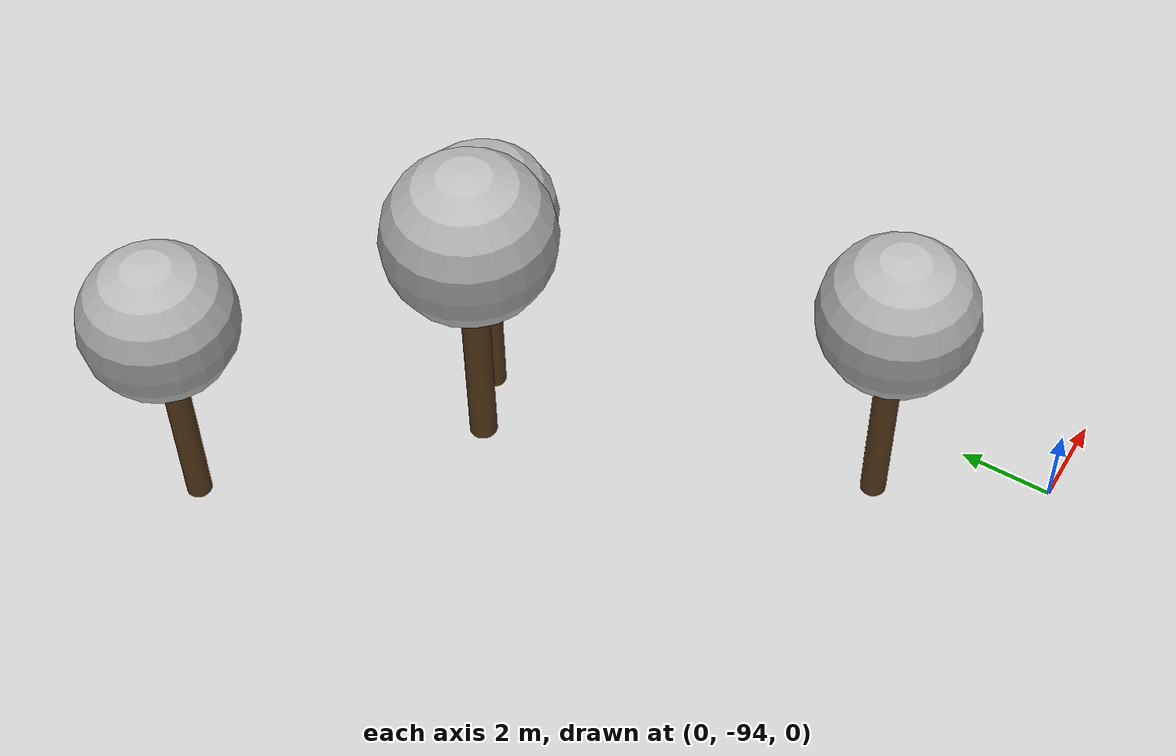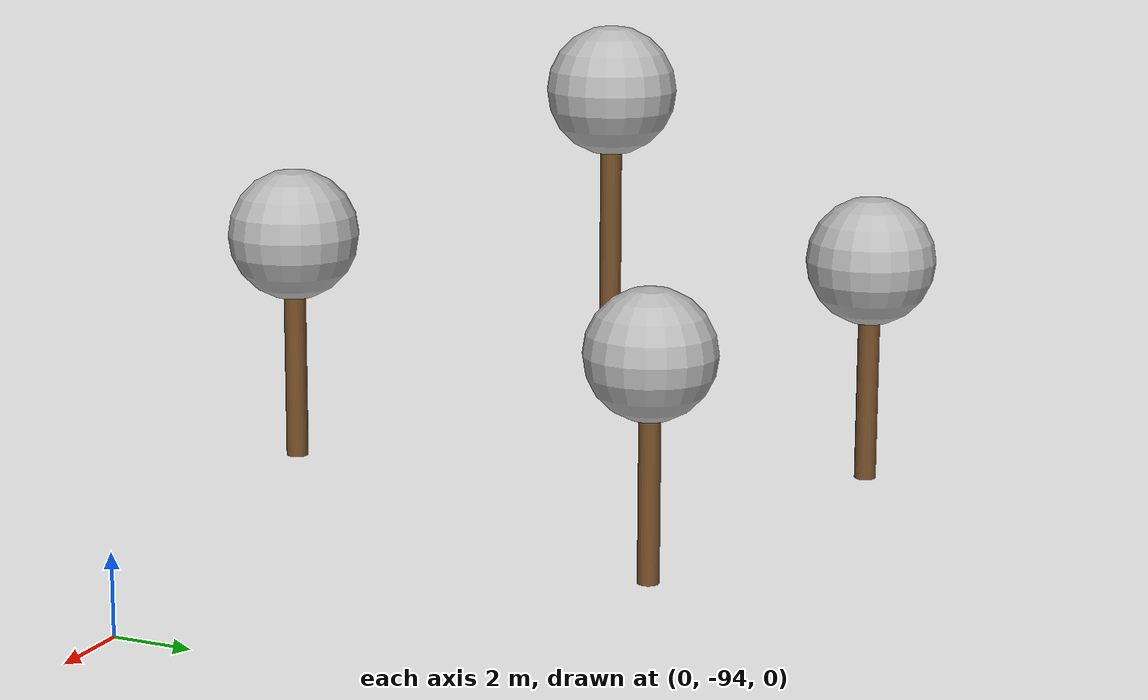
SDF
<sdf version="1.7">
 <world name="default">
  <model name="tree_simple_clone">
   <static>1</static>
   <link name="link">
    <pose>0 0 0.1 0 -0 0</pose>
    <inertial>
     <mass>666</mass>
     <inertia>
      <ixx>0.0861167</ixx>
      <ixy>0</ixy>
      <ixz>0</ixz>
      <iyy>0.0861167</iyy>
      <iyz>0</iyz>
      <izz>0.0861167</izz>
     </inertia>
    </inertial>
    <collision name="collision_trunk">
     <pose>0 0 2 0 -0 0</pose>
     <geometry><cylinder><radius>0.25</radius><length>4</length></cylinder></geometry>
     <surface>
      <contact>
       <poissons_ratio>0.347</poissons_ratio>
       <elastic_modulus>8.8e+09</elastic_modulus>
       <ode><kp>100000</kp><kd>100</kd><max_vel>100</max_vel><min_depth>0.001</min_depth></ode>
      </contact>
      <friction>
       <torsional>
        <coefficient>1</coefficient>
        <use_patch_radius>0</use_patch_radius>
        <surface_radius>0.01</surface_radius>
       </torsional>
      </friction>
     </surface>
    </collision>
    <collision name="collision_treetop">
     <pose>0 0 5.2 0 -0 0</pose>
     <geometry><sphere><radius>1.5</radius></sphere></geometry>
     <surface>
      <contact>
       <poissons_ratio>0.347</poissons_ratio>
       <elastic_modulus>8.8e+09</elastic_modulus>
       <ode><kp>100000</kp><kd>100</kd><max_vel>100</max_vel><min_depth>0.001</min_depth></ode>
      </contact>
      <friction>
       <torsional>
        <coefficient>1</coefficient>
        <use_patch_radius>0</use_patch_radius>
        <surface_radius>0.01</surface_radius>
       </torsional>
      </friction>
     </surface>
    </collision>
    <visual name="trunk">
     <pose>0 0 2 0 -0 0</pose>
     <geometry><cylinder><radius>0.25</radius><length>4</length></cylinder></geometry>
     <material>
      <script>
       <uri>model://tree_simple/scripts</uri>
       <uri>model://tree_simple/materials/textures</uri>
       <name>TreeSimple/Trunk</name>
      </script>
     </material>
    </visual>
    <visual name="treetop">
     <pose>0 0 5.2 0 -0 0</pose>
     <geometry><sphere><radius>1.5</radius></sphere></geometry>
     <material>
      <script>
       <uri>model://tree_simple/scripts</uri>
       <uri>model://tree_simple/materials/textures</uri>
       <name>TreeSimple/Treetop</name>
      </script>
     </material>
    </visual>
   </link>
   <pose>-10.5024 -79.8582 2.65837 0 -0 0</pose>
  </model>
  <model name="tree_simple_clone_clone_clone">
   <static>1</static>
   <link name="link">
    <pose>0 0 0.1 0 -0 0</pose>
    <inertial>
     <mass>666</mass>
     <inertia>
      <ixx>0.0861167</ixx>
      <ixy>0</ixy>
      <ixz>0</ixz>
      <iyy>0.0861167</iyy>
      <iyz>0</iyz>
      <izz>0.0861167</izz>
     </inertia>
    </inertial>
    <collision name="collision_trunk">
     <pose>0 0 2 0 -0 0</pose>
     <geometry><cylinder><radius>0.25</radius><length>4</length></cylinder></geometry>
     <surface>
      <contact>
       <poissons_ratio>0.347</poissons_ratio>
       <elastic_modulus>8.8e+09</elastic_modulus>
       <ode><kp>100000</kp><kd>100</kd><max_vel>100</max_vel><min_depth>0.001</min_depth></ode>
      </contact>
      <friction>
       <torsional>
        <coefficient>1</coefficient>
        <use_patch_radius>0</use_patch_radius>
        <surface_radius>0.01</surface_radius>
       </torsional>
      </friction>
     </surface>
    </collision>
    <collision name="collision_treetop">
     <pose>0 0 5.2 0 -0 0</pose>
     <geometry><sphere><radius>1.5</radius></sphere></geometry>
     <surface>
      <contact>
       <poissons_ratio>0.347</poissons_ratio>
       <elastic_modulus>8.8e+09</elastic_modulus>
       <ode><kp>100000</kp><kd>100</kd><max_vel>100</max_vel><min_depth>0.001</min_depth></ode>
      </contact>
      <friction>
       <torsional>
        <coefficient>1</coefficient>
        <use_patch_radius>0</use_patch_radius>
        <surface_radius>0.01</surface_radius>
       </torsional>
      </friction>
     </surface>
    </collision>
    <visual name="trunk">
     <pose>0 0 2 0 -0 0</pose>
     <geometry><cylinder><radius>0.25</radius><length>4</length></cylinder></geometry>
     <material>
      <script>
       <uri>model://tree_simple/scripts</uri>
       <uri>model://tree_simple/materials/textures</uri>
       <name>TreeSimple/Trunk</name>
      </script>
     </material>
    </visual>
    <visual name="treetop">
     <pose>0 0 5.2 0 -0 0</pose>
     <geometry><sphere><radius>1.5</radius></sphere></geometry>
     <material>
      <script>
       <uri>model://tree_simple/scripts</uri>
       <uri>model://tree_simple/materials/textures</uri>
       <name>TreeSimple/Treetop</name>
      </script>
     </material>
    </visual>
   </link>
   <pose>-8.68555 -85.6352 6.52166 0 -0 0</pose>
  </model>
  <model name="tree_simple_clone_clone_clone_0">
   <static>1</static>
   <link name="link">
    <pose>0 0 0.1 0 -0 0</pose>
    <inertial>
     <mass>666</mass>
     <inertia>
      <ixx>0.0861167</ixx>
      <ixy>0</ixy>
      <ixz>0</ixz>
      <iyy>0.0861167</iyy>
      <iyz>0</iyz>
      <izz>0.0861167</izz>
     </inertia>
    </inertial>
    <collision name="collision_trunk">
     <pose>0 0 2 0 -0 0</pose>
     <geometry><cylinder><radius>0.25</radius><length>4</length></cylinder></geometry>
     <surface>
      <contact>
       <poissons_ratio>0.347</poissons_ratio>
       <elastic_modulus>8.8e+09</elastic_modulus>
       <ode><kp>100000</kp><kd>100</kd><max_vel>100</max_vel><min_depth>0.001</min_depth></ode>
      </contact>
      <friction>
       <torsional>
        <coefficient>1</coefficient>
        <use_patch_radius>0</use_patch_radius>
        <surface_radius>0.01</surface_radius>
       </torsional>
      </friction>
     </surface>
    </collision>
    <collision name="collision_treetop">
     <pose>0 0 5.2 0 -0 0</pose>
     <geometry><sphere><radius>1.5</radius></sphere></geometry>
     <surface>
      <contact>
       <poissons_ratio>0.347</poissons_ratio>
       <elastic_modulus>8.8e+09</elastic_modulus>
       <ode><kp>100000</kp><kd>100</kd><max_vel>100</max_vel><min_depth>0.001</min_depth></ode>
      </contact>
      <friction>
       <torsional>
        <coefficient>1</coefficient>
        <use_patch_radius>0</use_patch_radius>
        <surface_radius>0.01</surface_radius>
       </torsional>
      </friction>
     </surface>
    </collision>
    <visual name="trunk">
     <pose>0 0 2 0 -0 0</pose>
     <geometry><cylinder><radius>0.25</radius><length>4</length></cylinder></geometry>
     <material>
      <script>
       <uri>model://tree_simple/scripts</uri>
       <uri>model://tree_simple/materials/textures</uri>
       <name>TreeSimple/Trunk</name>
      </script>
     </material>
    </visual>
    <visual name="treetop">
     <pose>0 0 5.2 0 -0 0</pose>
     <geometry><sphere><radius>1.5</radius></sphere></geometry>
     <material>
      <script>
       <uri>model://tree_simple/scripts</uri>
       <uri>model://tree_simple/materials/textures</uri>
       <name>TreeSimple/Treetop</name>
      </script>
     </material>
    </visual>
   </link>
   <pose>-4.38555 -82.8281 1.43203 0 -0 0</pose>
  </model>
  <model name="tree_simple_clone_clone_clone_1">
   <static>1</static>
   <link name="link">
    <pose>0 0 0.1 0 -0 0</pose>
    <inertial>
     <mass>666</mass>
     <inertia>
      <ixx>0.0861167</ixx>
      <ixy>0</ixy>
      <ixz>0</ixz>
      <iyy>0.0861167</iyy>
      <iyz>0</iyz>
      <izz>0.0861167</izz>
     </inertia>
    </inertial>
    <collision name="collision_trunk">
     <pose>0 0 2 0 -0 0</pose>
     <geometry><cylinder><radius>0.25</radius><length>4</length></cylinder></geometry>
     <surface>
      <contact>
       <poissons_ratio>0.347</poissons_ratio>
       <elastic_modulus>8.8e+09</elastic_modulus>
       <ode><kp>100000</kp><kd>100</kd><max_vel>100</max_vel><min_depth>0.001</min_depth></ode>
      </contact>
      <friction>
       <torsional>
        <coefficient>1</coefficient>
        <use_patch_radius>0</use_patch_radius>
        <surface_radius>0.01</surface_radius>
       </torsional>
      </friction>
     </surface>
    </collision>
    <collision name="collision_treetop">
     <pose>0 0 5.2 0 -0 0</pose>
     <geometry><sphere><radius>1.5</radius></sphere></geometry>
     <surface>
      <contact>
       <poissons_ratio>0.347</poissons_ratio>
       <elastic_modulus>8.8e+09</elastic_modulus>
       <ode><kp>100000</kp><kd>100</kd><max_vel>100</max_vel><min_depth>0.001</min_depth></ode>
      </contact>
      <friction>
       <torsional>
        <coefficient>1</coefficient>
        <use_patch_radius>0</use_patch_radius>
        <surface_radius>0.01</surface_radius>
       </torsional>
      </friction>
     </surface>
    </collision>
    <visual name="trunk">
     <pose>0 0 2 0 -0 0</pose>
     <geometry><cylinder><radius>0.25</radius><length>4</length></cylinder></geometry>
     <material>
      <script>
       <uri>model://tree_simple/scripts</uri>
       <uri>model://tree_simple/materials/textures</uri>
       <name>TreeSimple/Trunk</name>
      </script>
     </material>
    </visual>
    <visual name="treetop">
     <pose>0 0 5.2 0 -0 0</pose>
     <geometry><sphere><radius>1.5</radius></sphere></geometry>
     <material>
      <script>
       <uri>model://tree_simple/scripts</uri>
       <uri>model://tree_simple/materials/textures</uri>
       <name>TreeSimple/Treetop</name>
      </script>
     </material>
    </visual>
   </link>
   <pose>-4.13426 -91.5385 3.4407 0 -0 0</pose>
  </model>
 </world>
</sdf>
